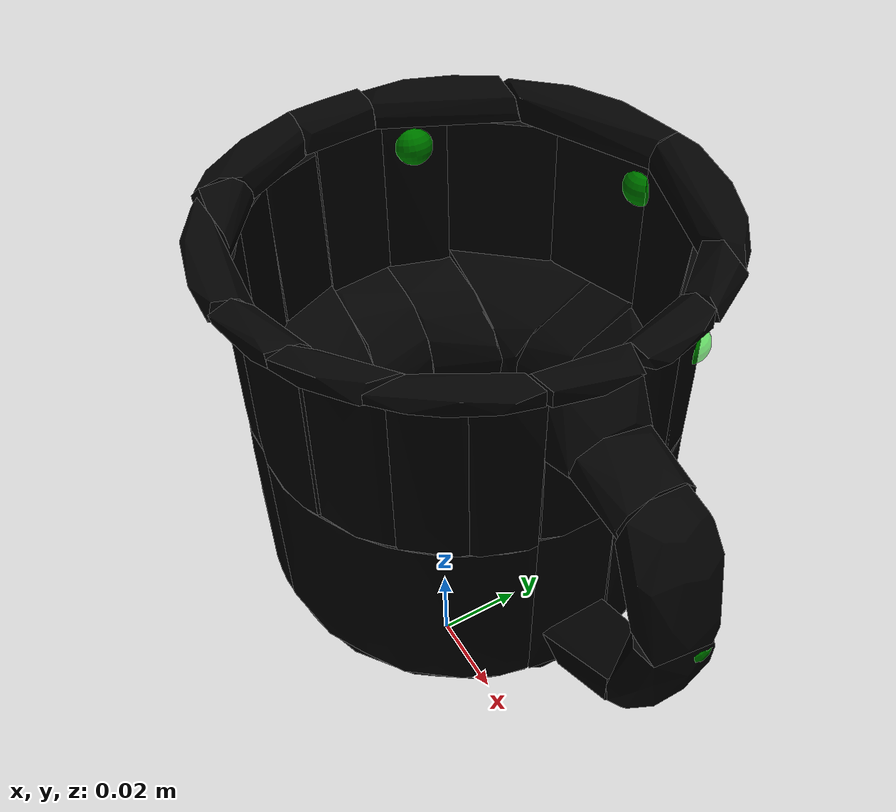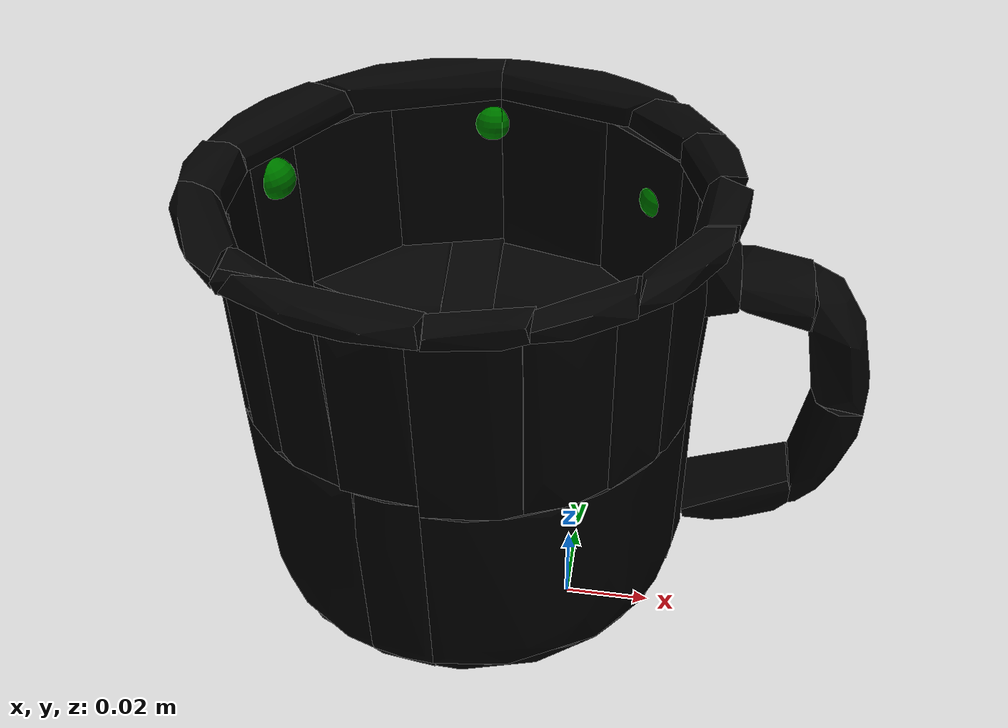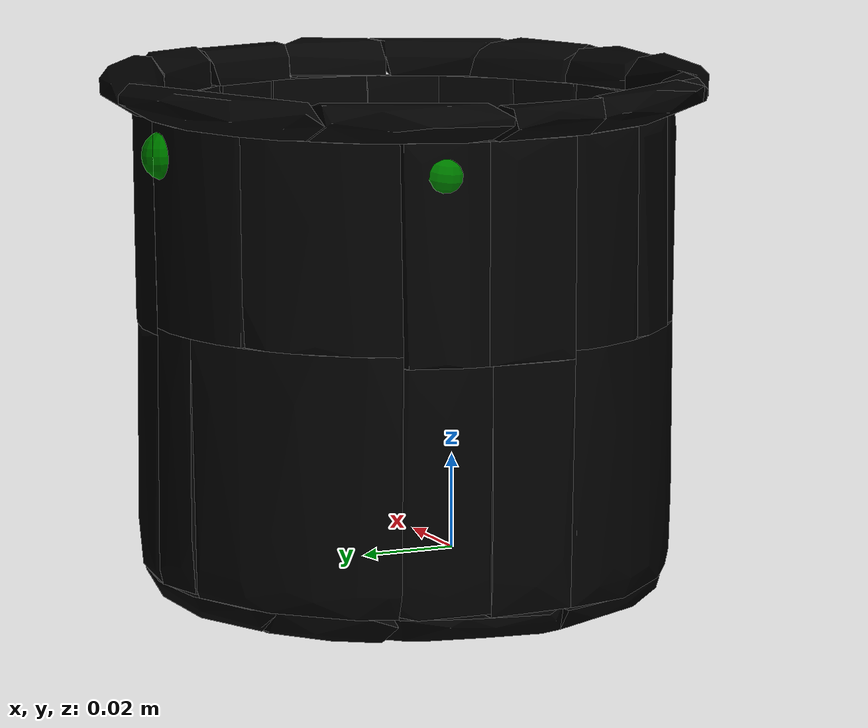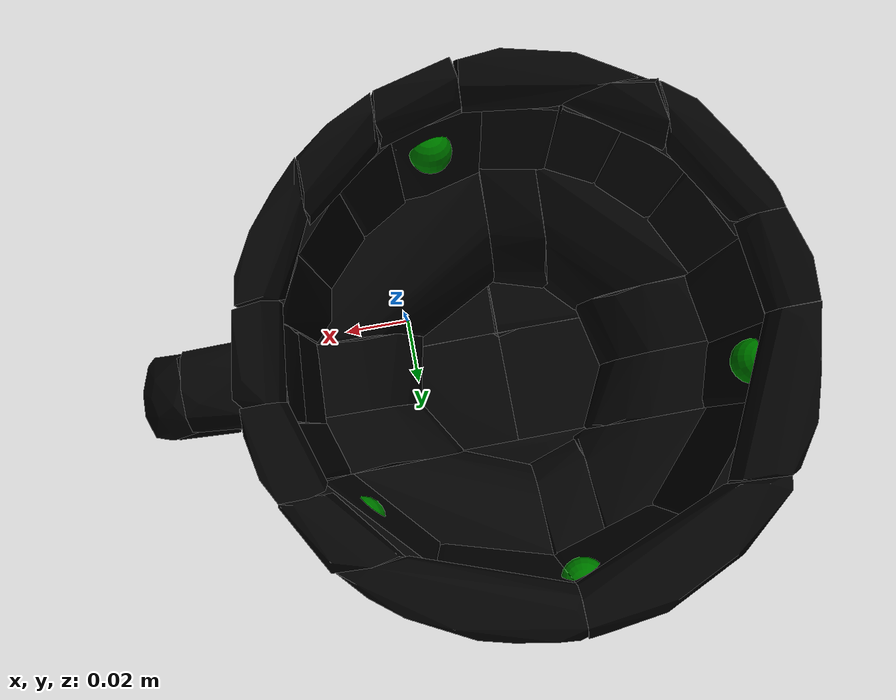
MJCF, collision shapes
<mujoco model="mug">
  <asset>
    <mesh name="mug_vis" file="meshes/mug_vis.obj" scale="1.3 1.3 1.3"/>
    <mesh name="mug_mesh0" file="meshes/mug_parts/mug0.obj" scale="1.3 1.3 1.3"/>
    <mesh name="mug_mesh1" file="meshes/mug_parts/mug1.obj" scale="1.3 1.3 1.3"/>
    <mesh name="mug_mesh2" file="meshes/mug_parts/mug2.obj" scale="1.3 1.3 1.3"/>
    <mesh name="mug_mesh3" file="meshes/mug_parts/mug3.obj" scale="1.3 1.3 1.3"/>
    <mesh name="mug_mesh4" file="meshes/mug_parts/mug4.obj" scale="1.3 1.3 1.3"/>
    <mesh name="mug_mesh5" file="meshes/mug_parts/mug5.obj" scale="1.3 1.3 1.3"/>
    <mesh name="mug_mesh6" file="meshes/mug_parts/mug6.obj" scale="1.3 1.3 1.3"/>
    <mesh name="mug_mesh7" file="meshes/mug_parts/mug7.obj" scale="1.3 1.3 1.3"/>
    <mesh name="mug_mesh8" file="meshes/mug_parts/mug8.obj" scale="1.3 1.3 1.3"/>
    <mesh name="mug_mesh9" file="meshes/mug_parts/mug9.obj" scale="1.3 1.3 1.3"/>
    <mesh name="mug_mesh10" file="meshes/mug_parts/mug10.obj" scale="1.3 1.3 1.3"/>
    <mesh name="mug_mesh11" file="meshes/mug_parts/mug11.obj" scale="1.3 1.3 1.3"/>
    <mesh name="mug_mesh12" file="meshes/mug_parts/mug12.obj" scale="1.3 1.3 1.3"/>
    <mesh name="mug_mesh13" file="meshes/mug_parts/mug13.obj" scale="1.3 1.3 1.3"/>
    <mesh name="mug_mesh14" file="meshes/mug_parts/mug14.obj" scale="1.3 1.3 1.3"/>
    <mesh name="mug_mesh15" file="meshes/mug_parts/mug15.obj" scale="1.3 1.3 1.3"/>
    <mesh name="mug_mesh16" file="meshes/mug_parts/mug16.obj" scale="1.3 1.3 1.3"/>
    <mesh name="mug_mesh17" file="meshes/mug_parts/mug17.obj" scale="1.3 1.3 1.3"/>
    <mesh name="mug_mesh18" file="meshes/mug_parts/mug18.obj" scale="1.3 1.3 1.3"/>
    <mesh name="mug_mesh19" file="meshes/mug_parts/mug19.obj" scale="1.3 1.3 1.3"/>
    <mesh name="mug_mesh20" file="meshes/mug_parts/mug20.obj" scale="1.3 1.3 1.3"/>
    <mesh name="mug_mesh21" file="meshes/mug_parts/mug21.obj" scale="1.3 1.3 1.3"/>
    <mesh name="mug_mesh22" file="meshes/mug_parts/mug22.obj" scale="1.3 1.3 1.3"/>
    <mesh name="mug_mesh23" file="meshes/mug_parts/mug23.obj" scale="1.3 1.3 1.3"/>
    <mesh name="mug_mesh24" file="meshes/mug_parts/mug24.obj" scale="1.3 1.3 1.3"/>
    <mesh name="mug_mesh25" file="meshes/mug_parts/mug25.obj" scale="1.3 1.3 1.3"/>
    <mesh name="mug_mesh26" file="meshes/mug_parts/mug26.obj" scale="1.3 1.3 1.3"/>
    <mesh name="mug_mesh27" file="meshes/mug_parts/mug27.obj" scale="1.3 1.3 1.3"/>
    <mesh name="mug_mesh28" file="meshes/mug_parts/mug28.obj" scale="1.3 1.3 1.3"/>
    <mesh name="mug_mesh29" file="meshes/mug_parts/mug29.obj" scale="1.3 1.3 1.3"/>
    <mesh name="mug_mesh30" file="meshes/mug_parts/mug30.obj" scale="1.3 1.3 1.3"/>
    <mesh name="mug_mesh31" file="meshes/mug_parts/mug31.obj" scale="1.3 1.3 1.3"/>
    <mesh name="mug_mesh32" file="meshes/mug_parts/mug32.obj" scale="1.3 1.3 1.3"/>
    <mesh name="mug_mesh33" file="meshes/mug_parts/mug33.obj" scale="1.3 1.3 1.3"/>
    <mesh name="mug_mesh34" file="meshes/mug_parts/mug34.obj" scale="1.3 1.3 1.3"/>
    <mesh name="mug_mesh35" file="meshes/mug_parts/mug35.obj" scale="1.3 1.3 1.3"/>
    <mesh name="mug_mesh36" file="meshes/mug_parts/mug36.obj" scale="1.3 1.3 1.3"/>
    <mesh name="mug_mesh37" file="meshes/mug_parts/mug37.obj" scale="1.3 1.3 1.3"/>
    <mesh name="mug_mesh38" file="meshes/mug_parts/mug38.obj" scale="1.3 1.3 1.3"/>
    <mesh name="mug_mesh39" file="meshes/mug_parts/mug39.obj" scale="1.3 1.3 1.3"/>
    <mesh name="mug_mesh40" file="meshes/mug_parts/mug40.obj" scale="1.3 1.3 1.3"/>
    <mesh name="mug_mesh41" file="meshes/mug_parts/mug41.obj" scale="1.3 1.3 1.3"/>
    <mesh name="mug_mesh42" file="meshes/mug_parts/mug42.obj" scale="1.3 1.3 1.3"/>
    <mesh name="mug_mesh43" file="meshes/mug_parts/mug43.obj" scale="1.3 1.3 1.3"/>
    <mesh name="mug_mesh44" file="meshes/mug_parts/mug44.obj" scale="1.3 1.3 1.3"/>
    <mesh name="mug_mesh45" file="meshes/mug_parts/mug45.obj" scale="1.3 1.3 1.3"/>
    <mesh name="mug_mesh46" file="meshes/mug_parts/mug46.obj" scale="1.3 1.3 1.3"/>
    <mesh name="mug_mesh47" file="meshes/mug_parts/mug47.obj" scale="1.3 1.3 1.3"/>
    <mesh name="mug_mesh48" file="meshes/mug_parts/mug48.obj" scale="1.3 1.3 1.3"/>
    <mesh name="mug_mesh49" file="meshes/mug_parts/mug49.obj" scale="1.3 1.3 1.3"/>
    <mesh name="mug_mesh50" file="meshes/mug_parts/mug50.obj" scale="1.3 1.3 1.3"/>
    <mesh name="mug_mesh51" file="meshes/mug_parts/mug51.obj" scale="1.3 1.3 1.3"/>
    <mesh name="mug_mesh52" file="meshes/mug_parts/mug52.obj" scale="1.3 1.3 1.3"/>
    <mesh name="mug_mesh53" file="meshes/mug_parts/mug53.obj" scale="1.3 1.3 1.3"/>
    <texture name="mug_tex" file="textures/mug.png" type="2d" />
    <material name="mug_mat" texture="mug_tex" texuniform="true" specular="0.2" shininess="0.3" reflectance="0.5" />
  </asset>

  <worldbody>
    <body>
      <body name="object">
        <geom name="body"
              mesh="mug_vis" type="mesh" material="mug_mat" contype="0" conaffinity="0" group="1" />
        <geom mesh="mug_mesh0" type="mesh" solimp="0.998 0.998 0.001" solref="0.001 1"
              density="1000" friction="5.0 5.0 5.0" material="mug_mat"
              group="0" condim="4" contype="1" conaffinity="1" rgba="0 0 0 0"/>
        <geom mesh="mug_mesh1" type="mesh" solimp="0.998 0.998 0.001" solref="0.001 1"
              density="1000" friction="5.0 5.0 5.0" material="mug_mat"
              group="0" condim="4" contype="1" conaffinity="1" rgba="0 0 0 0"/>
        <geom mesh="mug_mesh2" type="mesh" solimp="0.998 0.998 0.001" solref="0.001 1"
              density="1000" friction="5.0 5.0 5.0" material="mug_mat"
              group="0" condim="4" contype="1" conaffinity="1" rgba="0 0 0 0"/>
        <geom mesh="mug_mesh3" type="mesh" solimp="0.998 0.998 0.001" solref="0.001 1"
              density="1000" friction="5.0 5.0 5.0" material="mug_mat"
              group="0" condim="4" contype="1" conaffinity="1" rgba="0 0 0 0"/>
        <geom mesh="mug_mesh4" type="mesh" solimp="0.998 0.998 0.001" solref="0.001 1"
              density="1000" friction="5.0 5.0 5.0" material="mug_mat"
              group="0" condim="4" contype="1" conaffinity="1" rgba="0 0 0 0"/>
        <geom mesh="mug_mesh5" type="mesh" solimp="0.998 0.998 0.001" solref="0.001 1"
              density="1000" friction="5.0 5.0 5.0" material="mug_mat"
              group="0" condim="4" contype="1" conaffinity="1" rgba="0 0 0 0"/>
        <geom mesh="mug_mesh6" type="mesh" solimp="0.998 0.998 0.001" solref="0.001 1"
              density="1000" friction="5.0 5.0 5.0" material="mug_mat"
              group="0" condim="4" contype="1" conaffinity="1" rgba="0 0 0 0"/>
        <geom mesh="mug_mesh7" type="mesh" solimp="0.998 0.998 0.001" solref="0.001 1"
              density="1000" friction="5.0 5.0 5.0" material="mug_mat"
              group="0" condim="4" contype="1" conaffinity="1" rgba="0 0 0 0"/>
        <geom mesh="mug_mesh8" type="mesh" solimp="0.998 0.998 0.001" solref="0.001 1"
              density="1000" friction="5.0 5.0 5.0" material="mug_mat"
              group="0" condim="4" contype="1" conaffinity="1" rgba="0 0 0 0"/>
        <geom mesh="mug_mesh9" type="mesh" solimp="0.998 0.998 0.001" solref="0.001 1"
              density="1000" friction="5.0 5.0 5.0" material="mug_mat"
              group="0" condim="4" contype="1" conaffinity="1" rgba="0 0 0 0"/>
        <geom mesh="mug_mesh10" type="mesh" solimp="0.998 0.998 0.001" solref="0.001 1"
              density="1000" friction="5.0 5.0 5.0" material="mug_mat"
              group="0" condim="4" contype="1" conaffinity="1" rgba="0 0 0 0"/>
        <geom mesh="mug_mesh11" type="mesh" solimp="0.998 0.998 0.001" solref="0.001 1"
              density="1000" friction="5.0 5.0 5.0" material="mug_mat"
              group="0" condim="4" contype="1" conaffinity="1" rgba="0 0 0 0"/>
        <geom mesh="mug_mesh12" type="mesh" solimp="0.998 0.998 0.001" solref="0.001 1"
              density="1000" friction="5.0 5.0 5.0" material="mug_mat"
              group="0" condim="4" contype="1" conaffinity="1" rgba="0 0 0 0"/>
        <geom mesh="mug_mesh13" type="mesh" solimp="0.998 0.998 0.001" solref="0.001 1"
              density="1000" friction="5.0 5.0 5.0" material="mug_mat"
              group="0" condim="4" contype="1" conaffinity="1" rgba="0 0 0 0"/>
        <geom mesh="mug_mesh14" type="mesh" solimp="0.998 0.998 0.001" solref="0.001 1"
              density="1000" friction="5.0 5.0 5.0" material="mug_mat"
              group="0" condim="4" contype="1" conaffinity="1" rgba="0 0 0 0"/>
        <geom mesh="mug_mesh15" type="mesh" solimp="0.998 0.998 0.001" solref="0.001 1"
              density="1000" friction="5.0 5.0 5.0" material="mug_mat"
              group="0" condim="4" contype="1" conaffinity="1" rgba="0 0 0 0"/>
        <geom mesh="mug_mesh16" type="mesh" solimp="0.998 0.998 0.001" solref="0.001 1"
              density="1000" friction="5.0 5.0 5.0" material="mug_mat"
              group="0" condim="4" contype="1" conaffinity="1" rgba="0 0 0 0"/>
        <geom mesh="mug_mesh17" type="mesh" solimp="0.998 0.998 0.001" solref="0.001 1"
              density="1000" friction="5.0 5.0 5.0" material="mug_mat"
              group="0" condim="4" contype="1" conaffinity="1" rgba="0 0 0 0"/>
        <geom mesh="mug_mesh18" type="mesh" solimp="0.998 0.998 0.001" solref="0.001 1"
              density="1000" friction="5.0 5.0 5.0" material="mug_mat"
              group="0" condim="4" contype="1" conaffinity="1" rgba="0 0 0 0"/>
        <geom mesh="mug_mesh19" type="mesh" solimp="0.998 0.998 0.001" solref="0.001 1"
              density="1000" friction="5.0 5.0 5.0" material="mug_mat"
              group="0" condim="4" contype="1" conaffinity="1" rgba="0 0 0 0"/>
        <geom mesh="mug_mesh20" type="mesh" solimp="0.998 0.998 0.001" solref="0.001 1"
              density="1000" friction="5.0 5.0 5.0" material="mug_mat"
              group="0" condim="4" contype="1" conaffinity="1" rgba="0 0 0 0"/>
        <geom mesh="mug_mesh21" type="mesh" solimp="0.998 0.998 0.001" solref="0.001 1"
              density="1000" friction="5.0 5.0 5.0" material="mug_mat"
              group="0" condim="4" contype="1" conaffinity="1" rgba="0 0 0 0"/>
        <geom mesh="mug_mesh22" type="mesh" solimp="0.998 0.998 0.001" solref="0.001 1"
              density="1000" friction="5.0 5.0 5.0" material="mug_mat"
              group="0" condim="4" contype="1" conaffinity="1" rgba="0 0 0 0"/>
        <geom mesh="mug_mesh23" type="mesh" solimp="0.998 0.998 0.001" solref="0.001 1"
              density="1000" friction="5.0 5.0 5.0" material="mug_mat"
              group="0" condim="4" contype="1" conaffinity="1" rgba="0 0 0 0"/>
        <geom mesh="mug_mesh24" type="mesh" solimp="0.998 0.998 0.001" solref="0.001 1"
              density="1000" friction="5.0 5.0 5.0" material="mug_mat"
              group="0" condim="4" contype="1" conaffinity="1" rgba="0 0 0 0"/>
        <geom mesh="mug_mesh25" type="mesh" solimp="0.998 0.998 0.001" solref="0.001 1"
              density="1000" friction="5.0 5.0 5.0" material="mug_mat"
              group="0" condim="4" contype="1" conaffinity="1" rgba="0 0 0 0"/>
        <geom mesh="mug_mesh26" type="mesh" solimp="0.998 0.998 0.001" solref="0.001 1"
              density="1000" friction="5.0 5.0 5.0" material="mug_mat"
              group="0" condim="4" contype="1" conaffinity="1" rgba="0 0 0 0"/>
        <geom mesh="mug_mesh27" type="mesh" solimp="0.998 0.998 0.001" solref="0.001 1"
              density="1000" friction="5.0 5.0 5.0" material="mug_mat"
              group="0" condim="4" contype="1" conaffinity="1" rgba="0 0 0 0"/>
        <geom mesh="mug_mesh28" type="mesh" solimp="0.998 0.998 0.001" solref="0.001 1"
              density="1000" friction="5.0 5.0 5.0" material="mug_mat"
              group="0" condim="4" contype="1" conaffinity="1" rgba="0 0 0 0"/>
        <geom mesh="mug_mesh29" type="mesh" solimp="0.998 0.998 0.001" solref="0.001 1"
              density="1000" friction="5.0 5.0 5.0" material="mug_mat"
              group="0" condim="4" contype="1" conaffinity="1" rgba="0 0 0 0"/>
        <geom mesh="mug_mesh30" type="mesh" solimp="0.998 0.998 0.001" solref="0.001 1"
              density="1000" friction="5.0 5.0 5.0" material="mug_mat"
              group="0" condim="4" contype="1" conaffinity="1" rgba="0 0 0 0"/>
        <geom mesh="mug_mesh31" type="mesh" solimp="0.998 0.998 0.001" solref="0.001 1"
              density="1000" friction="5.0 5.0 5.0" material="mug_mat"
              group="0" condim="4" contype="1" conaffinity="1" rgba="0 0 0 0"/>
        <geom mesh="mug_mesh32" type="mesh" solimp="0.998 0.998 0.001" solref="0.001 1"
              density="1000" friction="5.0 5.0 5.0" material="mug_mat"
              group="0" condim="4" contype="1" conaffinity="1" rgba="0 0 0 0"/>
        <geom mesh="mug_mesh33" type="mesh" solimp="0.998 0.998 0.001" solref="0.001 1"
              density="1000" friction="5.0 5.0 5.0" material="mug_mat"
              group="0" condim="4" contype="1" conaffinity="1" rgba="0 0 0 0"/>
        <geom mesh="mug_mesh34" type="mesh" solimp="0.998 0.998 0.001" solref="0.001 1"
              density="1000" friction="5.0 5.0 5.0" material="mug_mat"
              group="0" condim="4" contype="1" conaffinity="1" rgba="0 0 0 0"/>
        <geom mesh="mug_mesh35" type="mesh" solimp="0.998 0.998 0.001" solref="0.001 1"
              density="1000" friction="5.0 5.0 5.0" material="mug_mat"
              group="0" condim="4" contype="1" conaffinity="1" rgba="0 0 0 0"/>
        <geom mesh="mug_mesh36" type="mesh" solimp="0.998 0.998 0.001" solref="0.001 1"
              density="1000" friction="5.0 5.0 5.0" material="mug_mat"
              group="0" condim="4" contype="1" conaffinity="1" rgba="0 0 0 0"/>
        <geom mesh="mug_mesh37" type="mesh" solimp="0.998 0.998 0.001" solref="0.001 1"
              density="1000" friction="5.0 5.0 5.0" material="mug_mat"
              group="0" condim="4" contype="1" conaffinity="1" rgba="0 0 0 0"/>
        <geom mesh="mug_mesh38" type="mesh" solimp="0.998 0.998 0.001" solref="0.001 1"
              density="1000" friction="5.0 5.0 5.0" material="mug_mat"
              group="0" condim="4" contype="1" conaffinity="1" rgba="0 0 0 0"/>
        <geom mesh="mug_mesh39" type="mesh" solimp="0.998 0.998 0.001" solref="0.001 1"
              density="1000" friction="5.0 5.0 5.0" material="mug_mat"
              group="0" condim="4" contype="1" conaffinity="1" rgba="0 0 0 0"/>
        <geom mesh="mug_mesh40" type="mesh" solimp="0.998 0.998 0.001" solref="0.001 1"
              density="1000" friction="5.0 5.0 5.0" material="mug_mat"
              group="0" condim="4" contype="1" conaffinity="1" rgba="0 0 0 0"/>
        <geom mesh="mug_mesh41" type="mesh" solimp="0.998 0.998 0.001" solref="0.001 1"
              density="1000" friction="5.0 5.0 5.0" material="mug_mat"
              group="0" condim="4" contype="1" conaffinity="1" rgba="0 0 0 0"/>
        <geom mesh="mug_mesh42" type="mesh" solimp="0.998 0.998 0.001" solref="0.001 1"
              density="1000" friction="5.0 5.0 5.0" material="mug_mat"
              group="0" condim="4" contype="1" conaffinity="1" rgba="0 0 0 0"/>
        <geom mesh="mug_mesh43" type="mesh" solimp="0.998 0.998 0.001" solref="0.001 1"
              density="1000" friction="5.0 5.0 5.0" material="mug_mat"
              group="0" condim="4" contype="1" conaffinity="1" rgba="0 0 0 0"/>
        <geom mesh="mug_mesh44" type="mesh" solimp="0.998 0.998 0.001" solref="0.001 1"
              density="1000" friction="5.0 5.0 5.0" material="mug_mat"
              group="0" condim="4" contype="1" conaffinity="1" rgba="0 0 0 0"/>
        <geom mesh="mug_mesh45" type="mesh" solimp="0.998 0.998 0.001" solref="0.001 1"
              density="1000" friction="5.0 5.0 5.0" material="mug_mat"
              group="0" condim="4" contype="1" conaffinity="1" rgba="0 0 0 0"/>
        <geom mesh="mug_mesh46" type="mesh" solimp="0.998 0.998 0.001" solref="0.001 1"
              density="1000" friction="5.0 5.0 5.0" material="mug_mat"
              group="0" condim="4" contype="1" conaffinity="1" rgba="0 0 0 0"/>
        <geom mesh="mug_mesh47" type="mesh" solimp="0.998 0.998 0.001" solref="0.001 1"
              density="1000" friction="5.0 5.0 5.0" material="mug_mat"
              group="0" condim="4" contype="1" conaffinity="1" rgba="0 0 0 0"/>
        <geom mesh="mug_mesh48" type="mesh" solimp="0.998 0.998 0.001" solref="0.001 1"
              density="1000" friction="5.0 5.0 5.0" material="mug_mat"
              group="0" condim="4" contype="1" conaffinity="1" rgba="0 0 0 0"/>
        <geom mesh="mug_mesh49" type="mesh" solimp="0.998 0.998 0.001" solref="0.001 1"
              density="1000" friction="5.0 5.0 5.0" material="mug_mat"
              group="0" condim="4" contype="1" conaffinity="1" rgba="0 0 0 0"/>
        <geom mesh="mug_mesh50" type="mesh" solimp="0.998 0.998 0.001" solref="0.001 1"
              density="1000" friction="5.0 5.0 5.0" material="mug_mat"
              group="0" condim="4" contype="1" conaffinity="1" rgba="0 0 0 0"/>
        <geom mesh="mug_mesh51" type="mesh" solimp="0.998 0.998 0.001" solref="0.001 1"
              density="1000" friction="5.0 5.0 5.0" material="mug_mat"
              group="0" condim="4" contype="1" conaffinity="1" rgba="0 0 0 0"/>
        <geom mesh="mug_mesh52" type="mesh" solimp="0.998 0.998 0.001" solref="0.001 1"
              density="1000" friction="5.0 5.0 5.0" material="mug_mat"
              group="0" condim="4" contype="1" conaffinity="1" rgba="0 0 0 0"/>
        <geom mesh="mug_mesh53" type="mesh" solimp="0.998 0.998 0.001" solref="0.001 1"
              density="1000" friction="5.0 5.0 5.0" material="mug_mat"
              group="0" condim="4" contype="1" conaffinity="1" rgba="0 0 0 0"/>
        <site name="grasp_0" pos="-0.0303 0.0746 0.0913" quat="0.0000 0.9992 0.0000 -0.0408" size="0.005" rgba="0 1 0 0.5"/>
        <site name="grasp_1" pos="0.0602 0.0216 0.0537" quat="-0.1758 -0.0012 0.9687 0.1754" size="0.005" rgba="0 1 0 0.5"/>
        <site name="grasp_2" pos="-0.0152 -0.0249 0.0865" quat="0.0441 -0.0647 0.9717 0.2230" size="0.005" rgba="0 1 0 0.5"/>
        <site name="grasp_3" pos="-0.0756 0.0357 0.0914" quat="0.0517 0.8128 0.5695 0.1110" size="0.005" rgba="0 1 0 0.5"/>
        <site name="grasp_4" pos="0.0145 0.0539 0.0832" quat="-0.0029 0.8472 -0.5137 -0.1354" size="0.005" rgba="0 1 0 0.5"/>
      </body>
      <site name="horizontal_radius_site" pos="0.05 0 0" size="0.005" rgba="0 0 0 0"/>
      <site name="top_site" pos="0 0 0.04" size="0.005" rgba="0 0 0 0"/>
      <site name="bottom_site" pos="0 0 -0.04" size="0.005" rgba="0 0 0 0"/>
    </body>
  </worldbody>
</mujoco>
